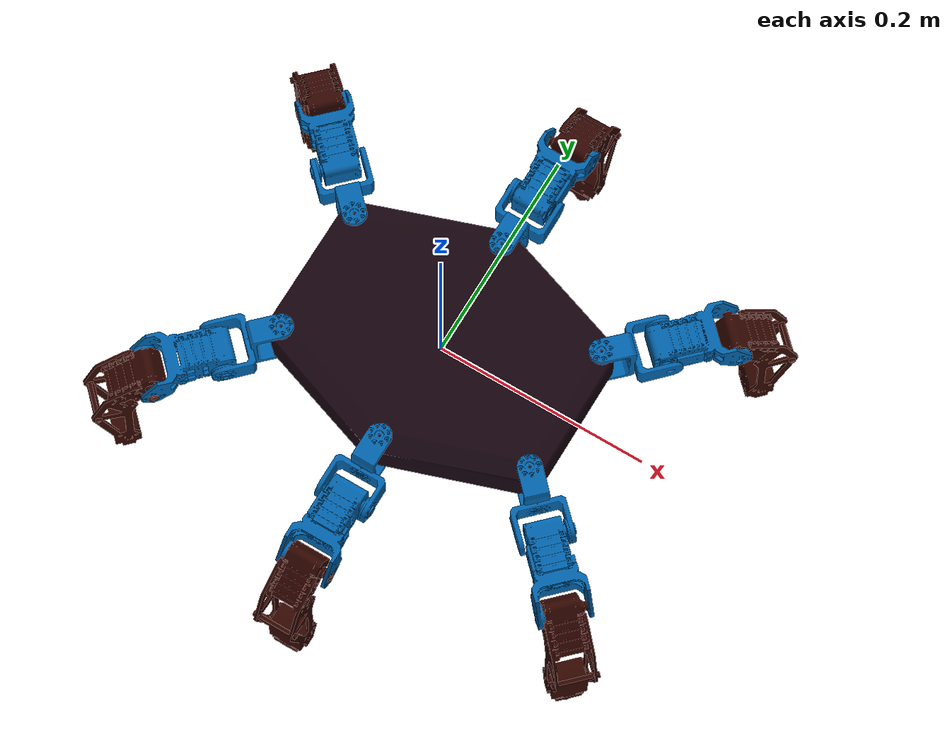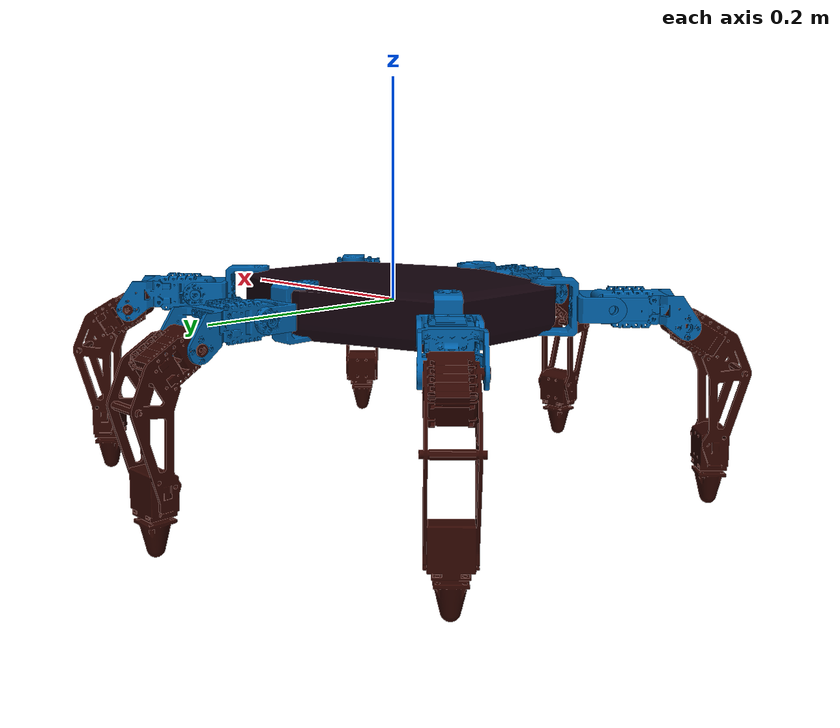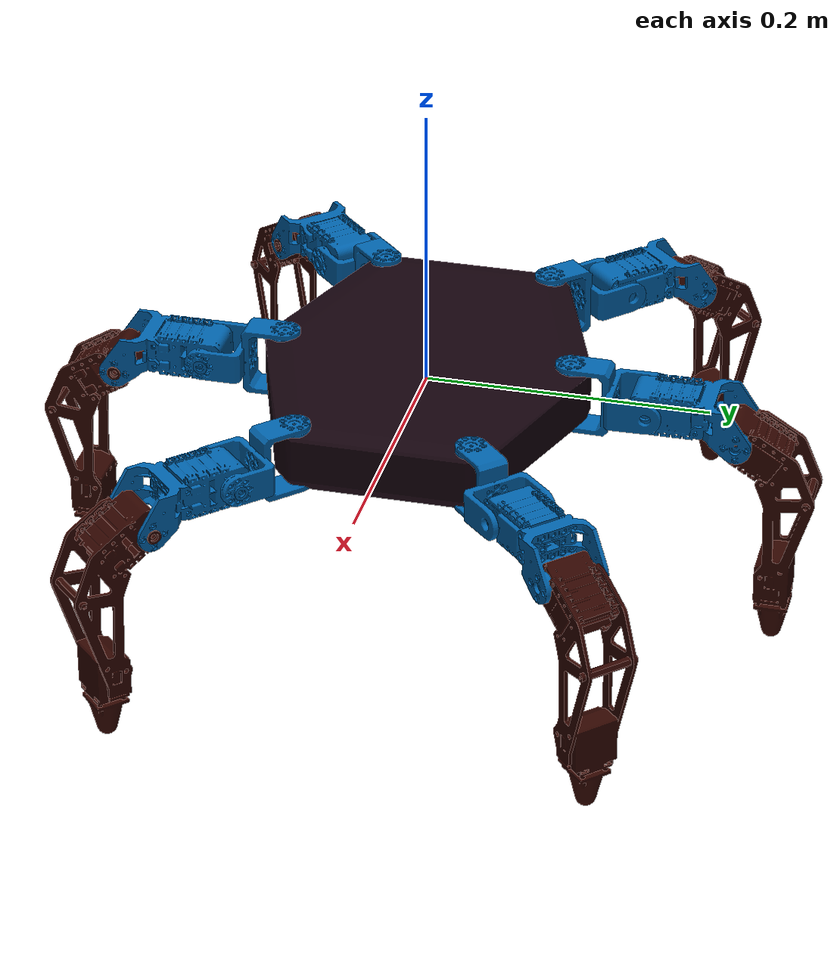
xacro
<?xml version="1.0" ?>
<robot name="PhantomX"  xmlns:xacro="http://www.ros.org/wiki/xacro">

  <xacro:include filename="$(find hexapod_description)/models/phantomx/urdf/phantomx.urdf.xacro" />

  <ros2_control name="GazeboSimSystem" type="system">
    <hardware>
      <plugin>gz_ros2_control/GazeboSimSystem</plugin>
    </hardware>
    <xacro:macro name="joint" params="leg_number joint_number">
      <joint name="joint_${leg_number}_${joint_number}">
        <command_interface name="effort">
          <param name="min">-2.8</param>
          <param name="max">2.8</param>
        </command_interface>
        <state_interface name="position"/>
        <state_interface name="velocity"/>
        <state_interface name="effort"/>
      </joint>
    </xacro:macro>

    <!-- Leg 1 joints -->
    <xacro:joint leg_number="1" joint_number="1"/>
    <xacro:joint leg_number="1" joint_number="2"/>
    <xacro:joint leg_number="1" joint_number="3"/>

    <!-- Leg 2 joints -->
    <xacro:joint leg_number="2" joint_number="1"/>
    <xacro:joint leg_number="2" joint_number="2"/>
    <xacro:joint leg_number="2" joint_number="3"/>

    <!-- Leg 3 joints -->
    <xacro:joint leg_number="3" joint_number="1"/>
    <xacro:joint leg_number="3" joint_number="2"/>
    <xacro:joint leg_number="3" joint_number="3"/>

    <!-- Leg 4 joints -->
    <xacro:joint leg_number="4" joint_number="1"/>
    <xacro:joint leg_number="4" joint_number="2"/>
    <xacro:joint leg_number="4" joint_number="3"/>

    <!-- Leg 5 joints -->
    <xacro:joint leg_number="5" joint_number="1"/>
    <xacro:joint leg_number="5" joint_number="2"/>
    <xacro:joint leg_number="5" joint_number="3"/>

    <!-- Leg 6 joints -->
    <xacro:joint leg_number="6" joint_number="1"/>
    <xacro:joint leg_number="6" joint_number="2"/>
    <xacro:joint leg_number="6" joint_number="3"/>
  </ros2_control>

  <!-- GAZEBO SIMULATION PLUGINS  -->
  <!-- ros2_control integration plugin for Gazebo -->
  <gazebo>
    <plugin filename="gz_ros2_control-system" name="gz_ros2_control::GazeboSimROS2ControlPlugin">
      <robot_param>robot_description</robot_param>
      <robot_param_node>robot_state_publisher</robot_param_node>
      <parameters>$(find hexapod_description)/control/controller_manager.yaml</parameters>
    </plugin>
  </gazebo>
</robot>

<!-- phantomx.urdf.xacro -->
<robot xmlns:xacro="http://www.ros.org/wiki/xacro">
  <joint name="j_phantomx_attachment" type="fixed">
    <origin rpy="0.00000 0.00000 0.00000" xyz="0.00000 0.00000 0.00000"/>
    <parent link="base_link"/>
    <child link="body"/>
  </joint>
  <joint name="joint_1_1" type="revolute">
    <limit lower="-2.61799" upper="2.61799" effort="2.8" velocity="5.65487"/>
    <origin rpy="-3.14147 -1.57071 -0.78578" xyz="0.12480 0.06164 0.00112"/>
    <parent link="body"/>
    <child link="coxa1_lf"/>
    <axis xyz="1.00000 0.00000 0.00000"/>
    <dynamics damping="0.05" friction="0.0"/>
  </joint>
  <joint name="joint_3_coxa" type="fixed">
    <origin rpy="-0.00010 1.57040 3.14149" xyz="0.00000 -0.05400 0.00000"/>
    <parent link="coxa1_lr"/>
    <child link="coxa2_lr"/>
  </joint>
  <joint name="joint_3_2" type="revolute">
    <limit lower="-2.61799" upper="2.61799" effort="2.8" velocity="5.65487"/>
    <origin rpy="3.14159 0.00000 0.00000" xyz="-0.00000 -0.00000 0.00000"/>
    <parent link="coxa2_lr"/>
    <child link="femur_lr"/>
    <axis xyz="1.00000 0.00000 0.00000"/>
    <dynamics damping="0.05" friction="0.0"/>
  </joint>
  <joint name="joint_3_3" type="revolute">
    <limit lower="-2.61799" upper="2.61799" effort="2.8" velocity="5.65487"/>
    <origin rpy="-1.57070 -0.00000 3.14159" xyz="-0.00000 -0.06450 -0.01450"/>
    <parent link="femur_lr"/>
    <child link="tibia_lr"/>
    <axis xyz="1.00000 0.00000 0.00000"/>
    <dynamics damping="0.05" friction="0.0"/>
  </joint>
  <joint name="joint_4_1" type="revolute">
    <limit lower="-2.61799" upper="2.61799" effort="2.8" velocity="5.65487"/>
    <origin rpy="-3.14147 -1.57071 2.35633" xyz="-0.12480 -0.06164 0.00112"/>
    <parent link="body"/>
    <child link="coxa1_rr"/>
    <axis xyz="1.00000 0.00000 0.00000"/>
    <dynamics damping="0.05" friction="0.0"/>
  </joint>
  <joint name="joint_4_coxa" type="fixed">
    <origin rpy="0.00043 1.57040 -3.14117" xyz="-0.00000 -0.05400 0.00000"/>
    <parent link="coxa1_rr"/>
    <child link="coxa2_rr"/>
  </joint>
  <joint name="joint_4_2" type="revolute">
    <limit lower="-2.61799" upper="2.61799" effort="2.8" velocity="5.65487"/>
    <origin rpy="3.14159 -0.00000 0.00000" xyz="0.00000 0.00000 -0.00000"/>
    <parent link="coxa2_rr"/>
    <child link="femur_rr"/>
    <axis xyz="1.00000 0.00000 0.00000"/>
    <dynamics damping="0.05" friction="0.0"/>
  </joint>
  <joint name="joint_4_3" type="revolute">
    <limit lower="-2.61799" upper="2.61799" effort="2.8" velocity="5.65487"/>
    <origin rpy="-1.57070 0.00000 3.14159" xyz="0.00000 -0.06450 -0.01450"/>
    <parent link="femur_rr"/>
    <child link="tibia_rr"/>
    <axis xyz="1.00000 0.00000 0.00000"/>
    <dynamics damping="0.05" friction="0.0"/>
  </joint>
  <joint name="joint_5_1" type="revolute">
    <limit lower="-2.61799" upper="2.61799" effort="2.8" velocity="5.65487"/>
    <origin rpy="3.14159 -1.57071 3.14159" xyz="0.00000 -0.10340 0.00112"/>
    <parent link="body"/>
    <child link="coxa1_rm"/>
    <axis xyz="1.00000 0.00000 0.00000"/>
    <dynamics damping="0.05" friction="0.0"/>
  </joint>
  <joint name="joint_5_coxa" type="fixed">
    <origin rpy="-0.00000 1.57040 3.14159" xyz="0.00000 -0.05400 0.00000"/>
    <parent link="coxa1_rm"/>
    <child link="coxa2_rm"/>
  </joint>
  <joint name="joint_5_2" type="revolute">
    <limit lower="-2.61799" upper="2.61799" effort="2.8" velocity="5.65487"/>
    <origin rpy="3.14159 -0.00000 0.00000" xyz="-0.00000 0.00000 -0.00000"/>
    <parent link="coxa2_rm"/>
    <child link="femur_rm"/>
    <axis xyz="1.00000 0.00000 0.00000"/>
    <dynamics damping="0.05" friction="0.0"/>
  </joint>
  <joint name="joint_1_coxa" type="fixed">
    <origin rpy="0.00011 1.57040 -3.14149" xyz="-0.00000 -0.05400 -0.00000"/>
    <parent link="coxa1_lf"/>
    <child link="coxa2_lf"/>
  </joint>
  <joint name="joint_5_3" type="revolute">
    <limit lower="-2.61799" upper="2.61799" effort="2.8" velocity="5.65487"/>
    <origin rpy="-1.57070 0.00000 3.14159" xyz="-0.00000 -0.06450 -0.01450"/>
    <parent link="femur_rm"/>
    <child link="tibia_rm"/>
    <axis xyz="1.00000 0.00000 0.00000"/>
    <dynamics damping="0.05" friction="0.0"/>
  </joint>
  <joint name="joint_6_1" type="revolute">
    <limit lower="-2.61799" upper="2.61799" effort="2.8" velocity="5.65487"/>
    <origin rpy="3.14147 -1.57071 -2.35633" xyz="0.12480 -0.06164 0.00112"/>
    <parent link="body"/>
    <child link="coxa1_rf"/>
    <axis xyz="1.00000 0.00000 0.00000"/>
    <dynamics damping="0.05" friction="0.0"/>
  </joint>
  <joint name="joint_6_coxa" type="fixed">
    <origin rpy="-0.00042 1.57040 3.14117" xyz="0.00000 -0.05400 -0.00000"/>
    <parent link="coxa1_rf"/>
    <child link="coxa2_rf"/>
  </joint>
  <joint name="joint_6_2" type="revolute">
    <limit lower="-2.61799" upper="2.61799" effort="2.8" velocity="5.65487"/>
    <origin rpy="3.14159 -0.00000 -0.00000" xyz="-0.00000 0.00000 0.00000"/>
    <parent link="coxa2_rf"/>
    <child link="femur_rf"/>
    <axis xyz="1.00000 0.00000 0.00000"/>
    <dynamics damping="0.05" friction="0.0"/>
  </joint>
  <joint name="joint_6_3" type="revolute">
    <limit lower="-2.61799" upper="2.61799" effort="2.8" velocity="5.65487"/>
    <origin rpy="-1.57070 0.00000 3.14159" xyz="-0.00000 -0.06450 -0.01450"/>
    <parent link="femur_rf"/>
    <child link="tibia_rf"/>
    <axis xyz="1.00000 0.00000 0.00000"/>
    <dynamics damping="0.05" friction="0.0"/>
  </joint>
  <joint name="joint_1_2" type="revolute">
    <limit lower="-2.61799" upper="2.61799" effort="2.8" velocity="5.65487"/>
    <origin rpy="3.14159 0.00000 0.00000" xyz="0.00000 0.00000 -0.00000"/>
    <parent link="coxa2_lf"/>
    <child link="femur_lf"/>
    <axis xyz="1.00000 0.00000 0.00000"/>
    <dynamics damping="0.05" friction="0.0"/>
  </joint>
  <joint name="joint_1_3" type="revolute">
    <limit lower="-2.61799" upper="2.61799" effort="2.8" velocity="5.65487"/>
    <origin rpy="-1.57070 0.00000 3.14159" xyz="0.00000 -0.06450 -0.01450"/>
    <parent link="femur_lf"/>
    <child link="tibia_lf"/>
    <axis xyz="1.00000 0.00000 0.00000"/>
    <dynamics damping="0.05" friction="0.0"/>
  </joint>
  <joint name="joint_2_1" type="revolute">
    <limit lower="-2.61799" upper="2.61799" effort="2.8" velocity="5.65487"/>
    <origin rpy="-3.14159 -1.57071 -0.00000" xyz="0.00000 0.10340 0.00112"/>
    <parent link="body"/>
    <child link="coxa1_lm"/>
    <axis xyz="1.00000 0.00000 0.00000"/>
    <dynamics damping="0.05" friction="0.0"/>
  </joint>
  <joint name="joint_2_coxa" type="fixed">
    <origin rpy="-0.00000 1.57040 3.14159" xyz="-0.00000 -0.05400 -0.00000"/>
    <parent link="coxa1_lm"/>
    <child link="coxa2_lm"/>
  </joint>
  <joint name="joint_2_2" type="revolute">
    <limit lower="-2.61799" upper="2.61799" effort="2.8" velocity="5.65487"/>
    <origin rpy="3.14159 0.00000 -0.00000" xyz="-0.00000 0.00000 -0.00000"/>
    <parent link="coxa2_lm"/>
    <child link="femur_lm"/>
    <axis xyz="1.00000 0.00000 0.00000"/>
    <dynamics damping="0.05" friction="0.0"/>
  </joint>
  <joint name="joint_2_3" type="revolute">
    <limit lower="-2.61799" upper="2.61799" effort="2.8" velocity="5.65487"/>
    <origin rpy="-1.57070 0.00000 3.14159" xyz="-0.00000 -0.06450 -0.01450"/>
    <parent link="femur_lm"/>
    <child link="tibia_lm"/>
    <axis xyz="1.00000 0.00000 0.00000"/>
    <dynamics damping="0.05" friction="0.0"/>
  </joint>
  <joint name="joint_3_1" type="revolute">
    <limit lower="-2.61799" upper="2.61799" effort="2.8" velocity="5.65487"/>
    <origin rpy="3.14147 -1.57071 0.78578" xyz="-0.12480 0.06164 0.00112"/>
    <parent link="body"/>
    <child link="coxa1_lr"/>
    <axis xyz="1.00000 0.00000 0.00000"/>
    <dynamics damping="0.05" friction="0.0"/>
  </joint>
  <link name="base_link"/>
  <link name="body">
    <collision name="body_collision">
      <origin rpy="0.00000 0.00000 0.00000" xyz="0.00000 0.00000 0.00000"/>
      <geometry>
        <mesh filename="package://hexapod_description/models/phantomx/meshes/stl/body_coll.stl" scale="1.00000 1.00000 1.00000"/>
      </geometry>
    </collision>
    <inertial>
      <inertia ixx="0.00312855" ixy="0.00000051" ixz="0.00000002" iyy="0.00532771" iyz="-0.00000002" izz="0.00813158"/>
      <origin rpy="0.00000 0.00000 0.00000" xyz="-0.000211 0.000143 -0.000468"/>
      <mass value="0.97560"/>
    </inertial>
    <visual name="body_visual">
      <material name="Magenta"/>
      <origin rpy="0.00000 0.00000 0.00000" xyz="0.00000 0.00000 0.00000"/>
      <geometry>
        <mesh filename="package://hexapod_description/models/phantomx/meshes/stl/body.stl" scale="1.00000 1.00000 1.00000"/>
      </geometry>
    </visual>
  </link>
  <link name="coxa1_lr">
    <collision name="c1_lr_None.001_collision">
      <origin rpy="-0.00014 0.00000 0.00000" xyz="0.00015 -0.00910 -0.00007"/>
      <geometry>
        <box size="0.04938 0.04321 0.02247"/>
      </geometry>
    </collision>
    <inertial>
      <inertia ixx="0.00001" ixy="0.00000" ixz="-0.00000" iyy="0.00001" iyz="-0.00000" izz="0.00001"/>
      <origin rpy="0.00000 0.00000 0.00000" xyz="0.00015 -0.00910 -0.00007"/>
      <mass value="0.04000"/>
    </inertial>
    <visual name="c1_lr_None.001">
      <material name="Light Blue"/>
      <origin rpy="-0.00000 0.00000 -0.00000" xyz="0.00000 -0.02520 -0.00000"/>
      <geometry>
        <mesh filename="package://hexapod_description/models/phantomx/meshes/stl/connect.stl" scale="1.00000 1.00000 1.00000"/>
      </geometry>
    </visual>
  </link>
  <link name="coxa2_lr">
    <collision name="c2_lr_None.001_collision">
      <origin rpy="-0.00000 -0.00000 0.00000" xyz="0.00015 -0.00910 -0.00007"/>
      <geometry>
        <box size="0.04938 0.04321 0.02247"/>
      </geometry>
    </collision>
    <inertial>
      <inertia ixx="0.00001" ixy="-0.00000" ixz="-0.00000" iyy="0.00001" iyz="-0.00000" izz="0.00001"/>
      <origin rpy="0.00000 0.00000 0.00000" xyz="0.00015 -0.00910 -0.00007"/>
      <mass value="0.04000"/>
    </inertial>
    <visual name="c2_lr_None.001">
      <material name="Light Blue"/>
      <origin rpy="-0.00000 0.00000 -0.00000" xyz="-0.00000 -0.02520 -0.00000"/>
      <geometry>
        <mesh filename="package://hexapod_description/models/phantomx/meshes/stl/connect.stl" scale="1.00000 1.00000 1.00000"/>
      </geometry>
    </visual>
  </link>
  <link name="femur_lr">
    <collision name="thigh_lr_None_collision">
      <origin rpy="0.00000 0.00000 -0.00000" xyz="0.00105 -0.03200 -0.00475"/>
      <geometry>
        <box size="0.05090 0.08700 0.04150"/>
      </geometry>
    </collision>
    <inertial>
      <inertia ixx="0.00006" ixy="0.00002" ixz="-0.00000" iyy="0.00006" iyz="-0.00000" izz="0.00008"/>
      <origin rpy="0.00000 0.00000 0.00000" xyz="0.00105 -0.03200 -0.00475"/>
      <mass value="0.10000"/>
    </inertial>
    <visual name="thigh_lr_None">
      <material name="Light Blue"/>
      <origin rpy="-0.00000 0.00000 -0.00000" xyz="-0.00000 0.00000 -0.00000"/>
      <geometry>
        <mesh filename="package://hexapod_description/models/phantomx/meshes/stl/thigh_l.stl" scale="1.00000 1.00000 1.00000"/>
      </geometry>
    </visual>
  </link>
  <link name="tibia_lr">
    <collision name="tibia_lr_None_collision">
      <origin rpy="-0.00000 -0.00000 -0.00000" xyz="-0.00095 0.07286 0.02098"/>
      <geometry>
        <box size="0.04800 0.17538 0.07059"/>
      </geometry>
    </collision>
    <inertial>
      <inertia ixx="0.00029" ixy="0.00001" ixz="0.00000" iyy="0.00029" iyz="0.00000" izz="0.00006"/>
      <origin rpy="0.00000 0.00000 0.00000" xyz="-0.00095 0.07286 0.02098"/>
      <mass value="0.10000"/>
    </inertial>
    <visual name="tibia_lr_None">
      <material name="Orange"/>
      <origin rpy="0.00000 0.00000 -0.00000" xyz="0.00000 0.00000 -0.00000"/>
      <geometry>
        <mesh filename="package://hexapod_description/models/phantomx/meshes/stl/tibia_l.stl" scale="1.00000 1.00000 1.00000"/>
      </geometry>
    </visual>
  </link>
  <link name="coxa1_rr">
    <collision name="c1_rr_None.001_collision">
      <origin rpy="0.00045 0.00000 -0.00000" xyz="0.00015 -0.00910 -0.00007"/>
      <geometry>
        <box size="0.04938 0.04321 0.02247"/>
      </geometry>
    </collision>
    <inertial>
      <inertia ixx="0.00001" ixy="-0.00000" ixz="0.00000" iyy="0.00001" iyz="-0.00000" izz="0.00001"/>
      <origin rpy="0.00000 0.00000 0.00000" xyz="0.00015 -0.00910 -0.00007"/>
      <mass value="0.04000"/>
    </inertial>
    <visual name="c1_rr_None.001">
      <material name="Light Blue"/>
      <origin rpy="-0.00000 -0.00000 -0.00000" xyz="-0.00000 -0.02520 -0.00000"/>
      <geometry>
        <mesh filename="package://hexapod_description/models/phantomx/meshes/stl/connect.stl" scale="1.00000 1.00000 1.00000"/>
      </geometry>
    </visual>
  </link>
  <link name="coxa2_rr">
    <collision name="c2_rr_None.001_collision">
      <origin rpy="0.00000 -0.00000 0.00000" xyz="0.00015 -0.00910 -0.00007"/>
      <geometry>
        <box size="0.04938 0.04321 0.02247"/>
      </geometry>
    </collision>
    <inertial>
      <inertia ixx="0.00001" ixy="0.00000" ixz="0.00000" iyy="0.00001" iyz="-0.00000" izz="0.00001"/>
      <origin rpy="0.00000 0.00000 0.00000" xyz="0.00015 -0.00910 -0.00007"/>
      <mass value="0.04000"/>
    </inertial>
    <visual name="c2_rr_None.001">
      <material name="Light Blue"/>
      <origin rpy="-0.00000 -0.00000 -0.00000" xyz="0.00000 -0.02520 -0.00000"/>
      <geometry>
        <mesh filename="package://hexapod_description/models/phantomx/meshes/stl/connect.stl" scale="1.00000 1.00000 1.00000"/>
      </geometry>
    </visual>
  </link>
  <link name="femur_rr">
    <collision name="thigh_rr_None_collision">
      <origin rpy="-0.00000 0.00000 -0.00000" xyz="0.00105 -0.03200 -0.00475"/>
      <geometry>
        <box size="0.05090 0.08700 0.04150"/>
      </geometry>
    </collision>
    <inertial>
      <inertia ixx="0.00006" ixy="-0.00002" ixz="0.00000" iyy="0.00006" iyz="-0.00000" izz="0.00008"/>
      <origin rpy="0.00000 0.00000 0.00000" xyz="0.00105 -0.03200 -0.00475"/>
      <mass value="0.10000"/>
    </inertial>
    <visual name="thigh_rr_None">
      <material name="Light Blue"/>
      <origin rpy="-0.00000 -0.00000 -0.00000" xyz="-0.00000 0.00000 0.00000"/>
      <geometry>
        <mesh filename="package://hexapod_description/models/phantomx/meshes/stl/thigh_l.stl" scale="1.00000 1.00000 1.00000"/>
      </geometry>
    </visual>
  </link>
  <link name="tibia_rr">
    <collision name="tibia_rr_None_collision">
      <origin rpy="-0.00000 -0.00000 0.00000" xyz="-0.00095 0.07286 0.02098"/>
      <geometry>
        <box size="0.04800 0.17538 0.07059"/>
      </geometry>
    </collision>
    <inertial>
      <inertia ixx="0.00029" ixy="-0.00001" ixz="-0.00000" iyy="0.00029" iyz="0.00000" izz="0.00006"/>
      <origin rpy="0.00000 0.00000 0.00000" xyz="-0.00095 0.07286 0.02098"/>
      <mass value="0.10000"/>
    </inertial>
    <visual name="tibia_rr_None">
      <material name="Orange"/>
      <origin rpy="-0.00000 0.00000 0.00000" xyz="0.00000 -0.00000 0.00000"/>
      <geometry>
        <mesh filename="package://hexapod_description/models/phantomx/meshes/stl/tibia_l.stl" scale="1.00000 1.00000 1.00000"/>
      </geometry>
    </visual>
  </link>
  <link name="coxa1_rm">
    <collision name="c1_rm_None.001_collision">
      <origin rpy="0.00000 0.00000 0.00000" xyz="0.00015 -0.00910 -0.00007"/>
      <geometry>
        <box size="0.04938 0.04321 0.02247"/>
      </geometry>
    </collision>
    <inertial>
      <inertia ixx="0.00001" ixy="0.00000" ixz="0.00000" iyy="0.00001" iyz="0.00000" izz="0.00001"/>
      <origin rpy="0.00000 0.00000 0.00000" xyz="0.00015 -0.00910 -0.00007"/>
      <mass value="0.04000"/>
    </inertial>
    <visual name="c1_rm_None.001">
      <material name="Light Blue"/>
      <origin rpy="0.00000 0.00000 0.00000" xyz="0.00000 -0.02520 0.00000"/>
      <geometry>
        <mesh filename="package://hexapod_description/models/phantomx/meshes/stl/connect.stl" scale="1.00000 1.00000 1.00000"/>
      </geometry>
    </visual>
  </link>
  <link name="coxa2_rm">
    <collision name="c2_rm_None.001_collision">
      <origin rpy="0.00000 -0.00000 -0.00000" xyz="0.00015 -0.00910 -0.00007"/>
      <geometry>
        <box size="0.04938 0.04321 0.02247"/>
      </geometry>
    </collision>
    <inertial>
      <inertia ixx="0.00001" ixy="-0.00000" ixz="0.00000" iyy="0.00001" iyz="-0.00000" izz="0.00001"/>
      <origin rpy="0.00000 0.00000 0.00000" xyz="0.00015 -0.00910 -0.00007"/>
      <mass value="0.04000"/>
    </inertial>
    <visual name="c2_rm_None.001">
      <material name="Light Blue"/>
      <origin rpy="0.00000 0.00000 -0.00000" xyz="-0.00000 -0.02520 -0.00000"/>
      <geometry>
        <mesh filename="package://hexapod_description/models/phantomx/meshes/stl/connect.stl" scale="1.00000 1.00000 1.00000"/>
      </geometry>
    </visual>
  </link>
  <link name="coxa1_lf">
    <collision name="c1_lf_None.001_collision">
      <origin rpy="0.00014 0.00000 -0.00000" xyz="0.00015 -0.00910 -0.00007"/>
      <geometry>
        <box size="0.04938 0.04321 0.02247"/>
      </geometry>
    </collision>
    <inertial>
      <inertia ixx="0.00001" ixy="-0.00000" ixz="-0.00000" iyy="0.00001" iyz="0.00000" izz="0.00001"/>
      <origin rpy="0.00000 0.00000 0.00000" xyz="0.00015 -0.00910 -0.00007"/>
      <mass value="0.04000"/>
    </inertial>
    <visual name="c1_lf_None.001">
      <material name="Light Blue"/>
      <origin rpy="0.00000 0.00000 0.00000" xyz="-0.00000 -0.02520 0.00000"/>
      <geometry>
        <mesh filename="package://hexapod_description/models/phantomx/meshes/stl/connect.stl" scale="1.00000 1.00000 1.00000"/>
      </geometry>
    </visual>
  </link>
  <link name="femur_rm">
    <collision name="thigh_rm_None_collision">
      <origin rpy="-0.00000 0.00000 0.00000" xyz="0.00105 -0.03200 -0.00475"/>
      <geometry>
        <box size="0.05090 0.08700 0.04150"/>
      </geometry>
    </collision>
    <inertial>
      <inertia ixx="0.00008" ixy="0.00000" ixz="0.00000" iyy="0.00004" iyz="0.00000" izz="0.00008"/>
      <origin rpy="0.00000 0.00000 0.00000" xyz="0.00105 -0.03200 -0.00475"/>
      <mass value="0.10000"/>
    </inertial>
    <visual name="thigh_rm_None">
      <material name="Light Blue"/>
      <origin rpy="-0.00000 0.00000 0.00000" xyz="-0.00000 -0.00000 -0.00000"/>
      <geometry>
        <mesh filename="package://hexapod_description/models/phantomx/meshes/stl/thigh_l.stl" scale="1.00000 1.00000 1.00000"/>
      </geometry>
    </visual>
  </link>
  <link name="tibia_rm">
    <collision name="tibia_rm_None_collision">
      <origin rpy="0.00000 0.00000 -0.00000" xyz="-0.00095 0.07286 0.02098"/>
      <geometry>
        <box size="0.04800 0.17538 0.07059"/>
      </geometry>
    </collision>
    <inertial>
      <inertia ixx="0.00030" ixy="-0.00000" ixz="-0.00000" iyy="0.00028" iyz="-0.00000" izz="0.00006"/>
      <origin rpy="0.00000 0.00000 0.00000" xyz="-0.00095 0.07286 0.02098"/>
      <mass value="0.10000"/>
    </inertial>
    <visual name="tibia_rm_None">
      <material name="Orange"/>
      <origin rpy="0.00000 0.00000 -0.00000" xyz="-0.00000 0.00000 -0.00000"/>
      <geometry>
        <mesh filename="package://hexapod_description/models/phantomx/meshes/stl/tibia_l.stl" scale="1.00000 1.00000 1.00000"/>
      </geometry>
    </visual>
  </link>
  <link name="coxa1_rf">
    <collision name="c1_rf_None.001_collision">
      <origin rpy="-0.00045 0.00000 0.00000" xyz="0.00015 -0.00910 -0.00007"/>
      <geometry>
        <box size="0.04938 0.04321 0.02247"/>
      </geometry>
    </collision>
    <inertial>
      <inertia ixx="0.00001" ixy="0.00000" ixz="0.00000" iyy="0.00001" iyz="0.00000" izz="0.00001"/>
      <origin rpy="0.00000 0.00000 0.00000" xyz="0.00015 -0.00910 -0.00007"/>
      <mass value="0.04000"/>
    </inertial>
    <visual name="c1_rf_None.001">
      <material name="Light Blue"/>
      <origin rpy="0.00000 -0.00000 0.00000" xyz="0.00000 -0.02520 0.00000"/>
      <geometry>
        <mesh filename="package://hexapod_description/models/phantomx/meshes/stl/connect.stl" scale="1.00000 1.00000 1.00000"/>
      </geometry>
    </visual>
  </link>
  <link name="coxa2_rf">
    <collision name="c2_rf_None.001_collision">
      <origin rpy="-0.00000 0.00000 -0.00000" xyz="0.00015 -0.00910 -0.00007"/>
      <geometry>
        <box size="0.04938 0.04321 0.02247"/>
      </geometry>
    </collision>
    <inertial>
      <inertia ixx="0.00001" ixy="-0.00000" ixz="0.00000" iyy="0.00001" iyz="0.00000" izz="0.00001"/>
      <origin rpy="0.00000 0.00000 0.00000" xyz="0.00015 -0.00910 -0.00007"/>
      <mass value="0.04000"/>
    </inertial>
    <visual name="c2_rf_None.001">
      <material name="Light Blue"/>
      <origin rpy="-0.00000 0.00000 0.00000" xyz="-0.00000 -0.02520 0.00000"/>
      <geometry>
        <mesh filename="package://hexapod_description/models/phantomx/meshes/stl/connect.stl" scale="1.00000 1.00000 1.00000"/>
      </geometry>
    </visual>
  </link>
  <link name="femur_rf">
    <collision name="thigh_rf_None_collision">
      <origin rpy="0.00000 0.00000 -0.00000" xyz="0.00105 -0.03200 -0.00475"/>
      <geometry>
        <box size="0.05090 0.08700 0.04150"/>
      </geometry>
    </collision>
    <inertial>
      <inertia ixx="0.00006" ixy="0.00002" ixz="0.00000" iyy="0.00006" iyz="0.00000" izz="0.00008"/>
      <origin rpy="0.00000 0.00000 0.00000" xyz="0.00105 -0.03200 -0.00475"/>
      <mass value="0.10000"/>
    </inertial>
    <visual name="thigh_rf_None">
      <material name="Light Blue"/>
      <origin rpy="0.00000 -0.00000 0.00000" xyz="-0.00000 -0.00000 -0.00000"/>
      <geometry>
        <mesh filename="package://hexapod_description/models/phantomx/meshes/stl/thigh_l.stl" scale="1.00000 1.00000 1.00000"/>
      </geometry>
    </visual>
  </link>
  <link name="tibia_rf">
    <collision name="tibia_rf_None_collision">
      <origin rpy="0.00000 -0.00000 -0.00000" xyz="-0.00095 0.07286 0.02098"/>
      <geometry>
        <box size="0.04800 0.17538 0.07059"/>
      </geometry>
    </collision>
    <inertial>
      <inertia ixx="0.00029" ixy="0.00001" ixz="-0.00000" iyy="0.00029" iyz="-0.00000" izz="0.00006"/>
      <origin rpy="0.00000 0.00000 0.00000" xyz="-0.00095 0.07286 0.02098"/>
      <mass value="0.10000"/>
    </inertial>
    <visual name="tibia_rf_None">
      <material name="Orange"/>
      <origin rpy="0.00000 0.00000 0.00000" xyz="-0.00000 0.00000 0.00000"/>
      <geometry>
        <mesh filename="package://hexapod_description/models/phantomx/meshes/stl/tibia_l.stl" scale="1.00000 1.00000 1.00000"/>
      </geometry>
    </visual>
  </link>
  <link name="coxa2_lf">
    <collision name="c2_lf_None.001_collision">
      <origin rpy="0.00000 -0.00000 -0.00000" xyz="0.00015 -0.00910 -0.00007"/>
      <geometry>
        <box size="0.04938 0.04321 0.02247"/>
      </geometry>
    </collision>
    <inertial>
      <inertia ixx="0.00001" ixy="0.00000" ixz="-0.00000" iyy="0.00001" iyz="0.00000" izz="0.00001"/>
      <origin rpy="0.00000 0.00000 0.00000" xyz="0.00015 -0.00910 -0.00007"/>
      <mass value="0.04000"/>
    </inertial>
    <visual name="c2_lf_None.001">
      <material name="Light Blue"/>
      <origin rpy="0.00000 0.00000 -0.00000" xyz="0.00000 -0.02520 0.00000"/>
      <geometry>
        <mesh filename="package://hexapod_description/models/phantomx/meshes/stl/connect.stl" scale="1.00000 1.00000 1.00000"/>
      </geometry>
    </visual>
  </link>
  <link name="femur_lf">
    <collision name="thigh_lf_None_collision">
      <origin rpy="-0.00000 0.00000 0.00000" xyz="0.00105 -0.03200 -0.00475"/>
      <geometry>
        <box size="0.05090 0.08700 0.04150"/>
      </geometry>
    </collision>
    <inertial>
      <inertia ixx="0.00006" ixy="-0.00002" ixz="-0.00000" iyy="0.00006" iyz="0.00000" izz="0.00008"/>
      <origin rpy="0.00000 0.00000 0.00000" xyz="0.00105 -0.03200 -0.00475"/>
      <mass value="0.10000"/>
    </inertial>
    <visual name="thigh_lf_None">
      <material name="Light Blue"/>
      <origin rpy="-0.00000 0.00000 0.00000" xyz="0.00000 -0.00000 0.00000"/>
      <geometry>
        <mesh filename="package://hexapod_description/models/phantomx/meshes/stl/thigh_l.stl" scale="1.00000 1.00000 1.00000"/>
      </geometry>
    </visual>
  </link>
  <link name="tibia_lf">
    <collision name="tibia_lf_None_collision">
      <origin rpy="0.00000 0.00000 0.00000" xyz="-0.00095 0.07286 0.02098"/>
      <geometry>
        <box size="0.04800 0.17538 0.07059"/>
      </geometry>
    </collision>
    <inertial>
      <inertia ixx="0.00029" ixy="-0.00001" ixz="0.00000" iyy="0.00029" iyz="-0.00000" izz="0.00006"/>
      <origin rpy="0.00000 0.00000 0.00000" xyz="-0.00095 0.07286 0.02098"/>
      <mass value="0.10000"/>
    </inertial>
    <visual name="tibia_lf_None">
      <material name="Orange"/>
      <origin rpy="-0.00000 0.00000 0.00000" xyz="0.00000 -0.00000 0.00000"/>
      <geometry>
        <mesh filename="package://hexapod_description/models/phantomx/meshes/stl/tibia_l.stl" scale="1.00000 1.00000 1.00000"/>
      </geometry>
    </visual>
  </link>
  <link name="coxa1_lm">
    <collision name="c1_lm_None.001_collision">
      <origin rpy="0.00000 0.00000 -0.00000" xyz="0.00015 -0.00910 -0.00007"/>
      <geometry>
        <box size="0.04938 0.04321 0.02247"/>
      </geometry>
    </collision>
    <inertial>
      <inertia ixx="0.00001" ixy="-0.00000" ixz="-0.00000" iyy="0.00001" iyz="-0.00000" izz="0.00001"/>
      <origin rpy="0.00000 0.00000 0.00000" xyz="0.00015 -0.00910 -0.00007"/>
      <mass value="0.04000"/>
    </inertial>
    <visual name="c1_lm_None.001">
      <material name="Light Blue"/>
      <origin rpy="0.00000 0.00000 0.00000" xyz="-0.00000 -0.02520 -0.00000"/>
      <geometry>
        <mesh filename="package://hexapod_description/models/phantomx/meshes/stl/connect.stl" scale="1.00000 1.00000 1.00000"/>
      </geometry>
    </visual>
  </link>
  <link name="coxa2_lm">
    <collision name="c2_lm_None.001_collision">
      <origin rpy="-0.00000 0.00000 -0.00000" xyz="0.00015 -0.00910 -0.00007"/>
      <geometry>
        <box size="0.04938 0.04321 0.02247"/>
      </geometry>
    </collision>
    <inertial>
      <inertia ixx="0.00001" ixy="0.00000" ixz="-0.00000" iyy="0.00001" iyz="0.00000" izz="0.00001"/>
      <origin rpy="0.00000 0.00000 0.00000" xyz="0.00015 -0.00910 -0.00007"/>
      <mass value="0.04000"/>
    </inertial>
    <visual name="c2_lm_None.001">
      <material name="Light Blue"/>
      <origin rpy="0.00000 0.00000 0.00000" xyz="0.00000 -0.02520 0.00000"/>
      <geometry>
        <mesh filename="package://hexapod_description/models/phantomx/meshes/stl/connect.stl" scale="1.00000 1.00000 1.00000"/>
      </geometry>
    </visual>
  </link>
  <link name="femur_lm">
    <collision name="thigh_lm_None_collision">
      <origin rpy="0.00000 0.00000 -0.00000" xyz="0.00105 -0.03200 -0.00475"/>
      <geometry>
        <box size="0.05090 0.08700 0.04150"/>
      </geometry>
    </collision>
    <inertial>
      <inertia ixx="0.00008" ixy="-0.00000" ixz="-0.00000" iyy="0.00004" iyz="0.00000" izz="0.00008"/>
      <origin rpy="0.00000 0.00000 0.00000" xyz="0.00105 -0.03200 -0.00475"/>
      <mass value="0.10000"/>
    </inertial>
    <visual name="thigh_lm_None">
      <material name="Light Blue"/>
      <origin rpy="0.00000 0.00000 -0.00000" xyz="-0.00000 -0.00000 -0.00000"/>
      <geometry>
        <mesh filename="package://hexapod_description/models/phantomx/meshes/stl/thigh_l.stl" scale="1.00000 1.00000 1.00000"/>
      </geometry>
    </visual>
  </link>
  <link name="tibia_lm">
    <collision name="tibia_lm_None_collision">
      <origin rpy="0.00000 0.00000 -0.00000" xyz="-0.00095 0.07286 0.02098"/>
      <geometry>
        <box size="0.04800 0.17538 0.07059"/>
      </geometry>
    </collision>
    <inertial>
      <inertia ixx="0.00030" ixy="-0.00000" ixz="0.00000" iyy="0.00028" iyz="0.00000" izz="0.00006"/>
      <origin rpy="0.00000 0.00000 0.00000" xyz="-0.00095 0.07286 0.02098"/>
      <mass value="0.10000"/>
    </inertial>
    <visual name="tibia_lm_None">
      <material name="Orange"/>
      <origin rpy="0.00000 0.00000 0.00000" xyz="-0.00000 -0.00000 -0.00000"/>
      <geometry>
        <mesh filename="package://hexapod_description/models/phantomx/meshes/stl/tibia_l.stl" scale="1.00000 1.00000 1.00000"/>
      </geometry>
    </visual>
  </link>
  <material name="Light Blue">
    <color rgba="0.00000 0.38824 0.67451 1.00000"/>
  </material>
  <material name="Magenta">
    <color rgba="0.07451 0.00784 0.04706 1.00000"/>
  </material>
  <material name="Orange">
    <color rgba="0.18824 0.01961 0.00000 1.00000"/>
  </material>
</robot>
